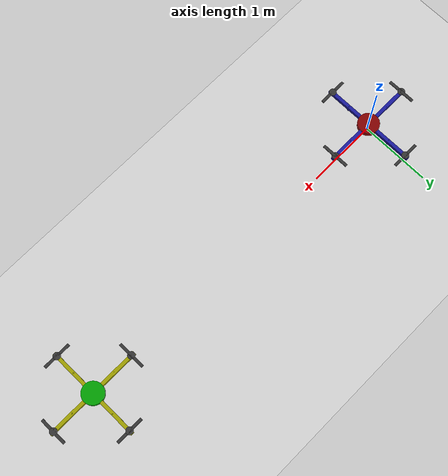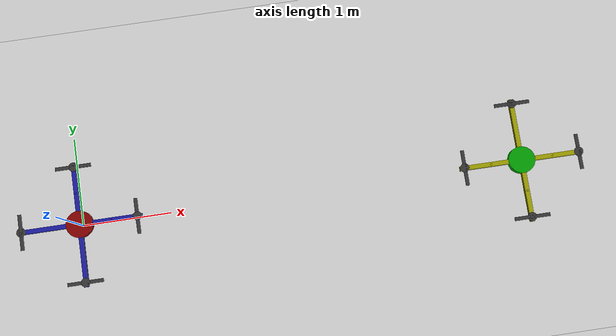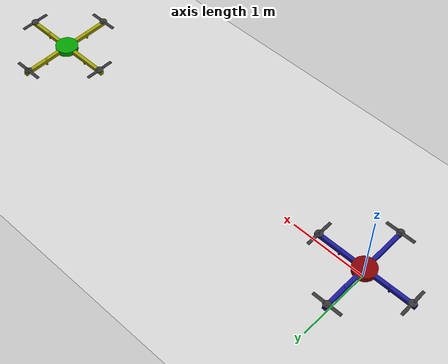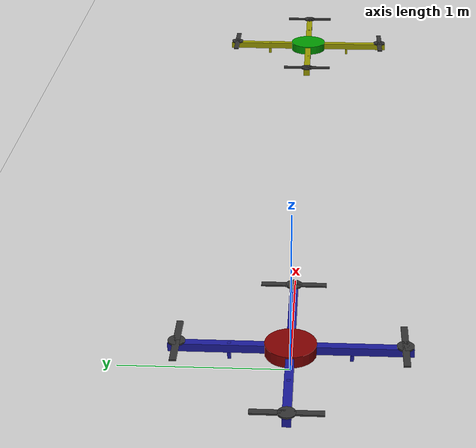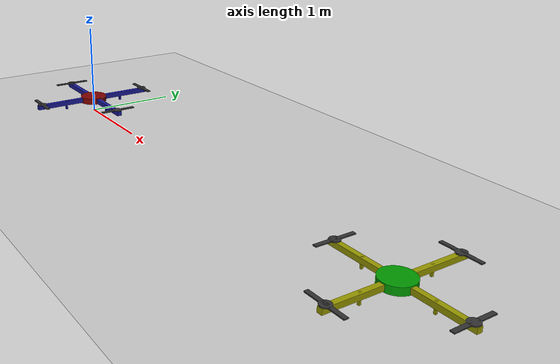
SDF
<sdf version="1.4">
 <world name="quadcopter_world">
  <include><uri>model://ground_plane</uri></include>
  <include><uri>model://sun</uri></include>
  <model name="controlled_quadcopter">
   <link name="center_cylinder">
    <pose>0 0 0.15 0 0 0</pose>
    <collision name="collision">
     <geometry><cylinder><radius>0.2</radius><length>0.07</length></cylinder></geometry>
    </collision>
    <visual name="visual">
     <geometry><cylinder><radius>0.15</radius><length>0.07</length></cylinder></geometry>
     <material>
      <ambient>0.5 0 0 1</ambient>
      <diffuse>0.5 0 0 1</diffuse>
      <specular>0.5 0 0 1</specular>
      <emissive>0.5 0 0 1</emissive>
     </material>
    </visual>
   </link>
   <link name="arm_1">
    <pose>0.35 0 0.15 0 0 0</pose>
    <collision name="collision"><geometry><box><size>0.7 0.05 0.05</size></box></geometry></collision>
    <visual name="visual">
     <geometry><box><size>0.7 0.05 0.05</size></box></geometry>
     <material>
      <ambient>0.1 0.1 0.6 1</ambient>
      <diffuse>0.1 0.1 0.6 1</diffuse>
      <specular>0.1 0.1 0.6 1</specular>
      <emissive>0.1 0.1 0.6 1</emissive>
     </material>
    </visual>
    <collision name="base1_collision"><geometry><box><size>0.02 0.02 0.1</size></box></geometry></collision>
    <visual name="base_visual">
     <geometry><box><size>0.02 0.02 0.1</size></box></geometry>
     <material>
      <ambient>0.1 0.1 0.6 1</ambient>
      <diffuse>0.1 0.1 0.6 1</diffuse>
      <specular>0.1 0.1 0.6 1</specular>
      <emissive>0.1 0.1 0.6 1</emissive>
     </material>
     <pose>0 0 -0.025 0 0 0</pose>
    </visual>
   </link>
   <link name="arm_2">
    <pose>0 0.35 0.15 0 0 1.5708</pose>
    <collision name="collision"><geometry><box><size>0.7 0.05 0.05</size></box></geometry></collision>
    <visual name="visual">
     <geometry><box><size>0.7 0.05 0.05</size></box></geometry>
     <material>
      <ambient>0.1 0.1 0.6 1</ambient>
      <diffuse>0.1 0.1 0.6 1</diffuse>
      <specular>0.1 0.1 0.6 1</specular>
      <emissive>0.1 0.1 0.6 1</emissive>
     </material>
    </visual>
    <collision name="base2_collision"><geometry><box><size>0.02 0.02 0.1</size></box></geometry></collision>
    <visual name="base_visual">
     <geometry><box><size>0.02 0.02 0.1</size></box></geometry>
     <material>
      <ambient>0.1 0.1 0.6 1</ambient>
      <diffuse>0.1 0.1 0.6 1</diffuse>
      <specular>0.1 0.1 0.6 1</specular>
      <emissive>0.1 0.1 0.6 1</emissive>
     </material>
     <pose>0 0 -0.025 0 0 0</pose>
    </visual>
   </link>
   <link name="arm_3">
    <pose>-0.35 0 0.15 0 0 0</pose>
    <collision name="collision"><geometry><box><size>0.7 0.05 0.05</size></box></geometry></collision>
    <visual name="visual">
     <geometry><box><size>0.7 0.05 0.05</size></box></geometry>
     <material>
      <ambient>0.1 0.1 0.6 1</ambient>
      <diffuse>0.1 0.1 0.6 1</diffuse>
      <specular>0.1 0.1 0.6 1</specular>
      <emissive>0.1 0.1 0.6 1</emissive>
     </material>
    </visual>
    <collision name="base3_collision"><geometry><box><size>0.02 0.02 0.1</size></box></geometry></collision>
    <visual name="base_visual">
     <geometry><box><size>0.02 0.02 0.1</size></box></geometry>
     <material>
      <ambient>0.1 0.1 0.6 1</ambient>
      <diffuse>0.1 0.1 0.6 1</diffuse>
      <specular>0.1 0.1 0.6 1</specular>
      <emissive>0.1 0.1 0.6 1</emissive>
     </material>
     <pose>0 0 -0.025 0 0 0</pose>
    </visual>
   </link>
   <link name="arm_4">
    <pose>0 -0.35 0.15 0 0 1.5708</pose>
    <collision name="collision"><geometry><box><size>0.7 0.05 0.05</size></box></geometry></collision>
    <visual name="visual">
     <geometry><box><size>0.7 0.05 0.05</size></box></geometry>
     <material>
      <ambient>0.1 0.1 0.6 1</ambient>
      <diffuse>0.1 0.1 0.6 1</diffuse>
      <specular>0.1 0.1 0.6 1</specular>
      <emissive>0.1 0.1 0.6 1</emissive>
     </material>
    </visual>
    <collision name="base4_collision"><geometry><box><size>0.02 0.02 0.1</size></box></geometry></collision>
    <visual name="base_visual">
     <geometry><box><size>0.02 0.02 0.1</size></box></geometry>
     <material>
      <ambient>0.1 0.1 0.6 1</ambient>
      <diffuse>0.1 0.1 0.6 1</diffuse>
      <specular>0.1 0.1 0.6 1</specular>
      <emissive>0.1 0.1 0.6 1</emissive>
     </material>
     <pose>0 0 -0.025 0 0 0</pose>
    </visual>
   </link>
   <link name="rotor_1">
    <pose>0.65 0 0.18 0 0 0</pose>
    <collision name="collision">
     <geometry><cylinder><radius>0.05</radius><length>0.01</length></cylinder></geometry>
    </collision>
    <visual name="visual">
     <geometry><cylinder><radius>0.05</radius><length>0.01</length></cylinder></geometry>
     <material>
      <ambient>0.2 0.2 0.2 1</ambient>
      <diffuse>0.2 0.2 0.2 1</diffuse>
      <specular>0.2 0.2 0.2 1</specular>
      <emissive>0.2 0.2 0.2 1</emissive>
     </material>
    </visual>
    <collision name="blade_1_collision">
     <geometry><box><size>0.2 0.04 0.01</size></box></geometry>
     <pose>0 0.1 0 0 0 1.5708</pose>
    </collision>
    <visual name="blade_1_visual">
     <geometry><box><size>0.2 0.04 0.01</size></box></geometry>
     <material>
      <ambient>0.2 0.2 0.2 1</ambient>
      <diffuse>0.2 0.2 0.2 1</diffuse>
      <specular>0.2 0.2 0.2 1</specular>
      <emissive>0.2 0.2 0.2 1</emissive>
     </material>
     <pose>0 0.1 0 0 0 1.5708</pose>
    </visual>
    <collision name="blade_2_collision">
     <geometry><box><size>0.2 0.04 0.01</size></box></geometry>
     <pose>0 -0.1 0 0 0 1.5708</pose>
    </collision>
    <visual name="blade_2_visual">
     <geometry><box><size>0.2 0.04 0.01</size></box></geometry>
     <material>
      <ambient>0.2 0.2 0.2 1</ambient>
      <diffuse>0.2 0.2 0.2 1</diffuse>
      <specular>0.2 0.2 0.2 1</specular>
      <emissive>0.2 0.2 0.2 1</emissive>
     </material>
     <pose>0 -0.1 0 0 0 1.5708</pose>
    </visual>
   </link>
   <link name="rotor_2">
    <pose>0 0.65 0.18 0 0 0</pose>
    <collision name="collision">
     <geometry><cylinder><radius>0.05</radius><length>0.01</length></cylinder></geometry>
    </collision>
    <visual name="visual">
     <geometry><cylinder><radius>0.05</radius><length>0.01</length></cylinder></geometry>
     <material>
      <ambient>0.2 0.2 0.2 1</ambient>
      <diffuse>0.2 0.2 0.2 1</diffuse>
      <specular>0.1 0.1 0.1 1</specular>
      <emissive>0 0 0 1</emissive>
     </material>
    </visual>
    <collision name="blade_1_collision">
     <geometry><box><size>0.2 0.04 0.01</size></box></geometry>
     <pose>0.1 0 0 0 0 0</pose>
    </collision>
    <visual name="blade_1_visual">
     <geometry><box><size>0.2 0.04 0.01</size></box></geometry>
     <material>
      <ambient>0.2 0.2 0.2 1</ambient>
      <diffuse>0.2 0.2 0.2 1</diffuse>
      <specular>0.1 0.1 0.1 1</specular>
      <emissive>0 0 0 1</emissive>
     </material>
     <pose>0.1 0 0 0 0 0</pose>
    </visual>
    <collision name="blade_2_collision">
     <geometry><box><size>0.2 0.04 0.01</size></box></geometry>
     <pose>-0.1 0 0 0 0 0</pose>
    </collision>
    <visual name="blade_2_visual">
     <geometry><box><size>0.2 0.04 0.01</size></box></geometry>
     <material>
      <ambient>0.2 0.2 0.2 1</ambient>
      <diffuse>0.2 0.2 0.2 1</diffuse>
      <specular>0.1 0.1 0.1 1</specular>
      <emissive>0 0 0 1</emissive>
     </material>
     <pose>-0.1 0 0 0 0 0</pose>
    </visual>
   </link>
   <link name="rotor_3">
    <pose>-0.65 0 0.18 0 0 0</pose>
    <collision name="collision">
     <geometry><cylinder><radius>0.05</radius><length>0.01</length></cylinder></geometry>
    </collision>
    <visual name="visual">
     <geometry><cylinder><radius>0.05</radius><length>0.01</length></cylinder></geometry>
     <material>
      <ambient>0.2 0.2 0.2 1</ambient>
      <diffuse>0.2 0.2 0.2 1</diffuse>
      <specular>0.2 0.2 0.2 1</specular>
      <emissive>0.2 0.2 0.2 1</emissive>
     </material>
    </visual>
    <collision name="blade_1_collision">
     <geometry><box><size>0.2 0.04 0.01</size></box></geometry>
     <pose>0 0.1 0 0 0 1.5708</pose>
    </collision>
    <visual name="blade_1_visual">
     <geometry><box><size>0.2 0.04 0.01</size></box></geometry>
     <material>
      <ambient>0.2 0.2 0.2 1</ambient>
      <diffuse>0.2 0.2 0.2 1</diffuse>
      <specular>0.2 0.2 0.2 1</specular>
      <emissive>0.2 0.2 0.2 1</emissive>
     </material>
     <pose>0 0.1 0 0 0 1.5708</pose>
    </visual>
    <collision name="blade_2_collision">
     <geometry><box><size>0.2 0.04 0.01</size></box></geometry>
     <pose>0 -0.1 0 0 0 1.5708</pose>
    </collision>
    <visual name="blade_2_visual">
     <geometry><box><size>0.2 0.04 0.01</size></box></geometry>
     <material>
      <ambient>0.2 0.2 0.2 1</ambient>
      <diffuse>0.2 0.2 0.2 1</diffuse>
      <specular>0.2 0.2 0.2 1</specular>
      <emissive>0.2 0.2 0.2 1</emissive>
     </material>
     <pose>0 -0.1 0 0 0 1.5708</pose>
    </visual>
   </link>
   <link name="rotor_4">
    <pose>0 -0.65 0.18 0 0 0</pose>
    <collision name="collision">
     <geometry><cylinder><radius>0.05</radius><length>0.01</length></cylinder></geometry>
    </collision>
    <visual name="visual">
     <geometry><cylinder><radius>0.05</radius><length>0.01</length></cylinder></geometry>
     <material>
      <ambient>0.2 0.2 0.2 1</ambient>
      <diffuse>0.2 0.2 0.2 1</diffuse>
      <specular>0.1 0.1 0.1 1</specular>
      <emissive>0 0 0 1</emissive>
     </material>
    </visual>
    <collision name="blade_1_collision">
     <geometry><box><size>0.2 0.04 0.01</size></box></geometry>
     <pose>0.1 0 0 0 0 0</pose>
    </collision>
    <visual name="blade_1_visual">
     <geometry><box><size>0.2 0.04 0.01</size></box></geometry>
     <material>
      <ambient>0.2 0.2 0.2 1</ambient>
      <diffuse>0.2 0.2 0.2 1</diffuse>
      <specular>0.1 0.1 0.1 1</specular>
      <emissive>0 0 0 1</emissive>
     </material>
     <pose>0.1 0 0 0 0 0</pose>
    </visual>
    <collision name="blade_2_collision">
     <geometry><box><size>0.2 0.04 0.01</size></box></geometry>
     <pose>-0.1 0 0 0 0 0</pose>
    </collision>
    <visual name="blade_2_visual">
     <geometry><box><size>0.2 0.04 0.01</size></box></geometry>
     <material>
      <ambient>0.2 0.2 0.2 1</ambient>
      <diffuse>0.2 0.2 0.2 1</diffuse>
      <specular>0.1 0.1 0.1 1</specular>
      <emissive>0 0 0 1</emissive>
     </material>
     <pose>-0.1 0 0 0 0 0</pose>
    </visual>
   </link>
   <joint name="arm_1_joint" type="fixed"><parent>center_cylinder</parent><child>arm_1</child></joint>
   <joint name="arm_2_joint" type="fixed"><parent>center_cylinder</parent><child>arm_2</child></joint>
   <joint name="arm_3_joint" type="fixed"><parent>center_cylinder</parent><child>arm_3</child></joint>
   <joint name="arm_4_joint" type="fixed"><parent>center_cylinder</parent><child>arm_4</child></joint>
   <joint name="rotor_1_joint" type="revolute">
    <parent>arm_1</parent>
    <child>rotor_1</child>
    <axis><xyz>0 0 1</xyz></axis>
   </joint>
   <joint name="rotor_2_joint" type="revolute">
    <parent>arm_2</parent>
    <child>rotor_2</child>
    <axis><xyz>0 0 1</xyz></axis>
   </joint>
   <joint name="rotor_3_joint" type="revolute">
    <parent>arm_3</parent>
    <child>rotor_3</child>
    <axis><xyz>0 0 1</xyz></axis>
   </joint>
   <joint name="rotor_4_joint" type="revolute">
    <parent>arm_4</parent>
    <child>rotor_4</child>
    <axis><xyz>0 0 1</xyz></axis>
   </joint>
  </model>
  <model name="autonomous_quadcopter">
   <pose>5 0 0 0 0 0</pose>
   <link name="center_cylinder">
    <pose>0 0 0.15 0 0 0</pose>
    <collision name="collision">
     <geometry><cylinder><radius>0.2</radius><length>0.07</length></cylinder></geometry>
    </collision>
    <visual name="visual">
     <geometry><cylinder><radius>0.15</radius><length>0.07</length></cylinder></geometry>
     <material>
      <ambient>0 0.6 0 1</ambient>
      <diffuse>0 0.6 0 1</diffuse>
      <specular>0 0.6 0 1</specular>
      <emissive>0 0.6 0 1</emissive>
     </material>
    </visual>
   </link>
   <link name="arm_1">
    <pose>0.35 0 0.15 0 0 0</pose>
    <collision name="collision"><geometry><box><size>0.7 0.05 0.05</size></box></geometry></collision>
    <visual name="visual">
     <geometry><box><size>0.7 0.05 0.05</size></box></geometry>
     <material>
      <ambient>0.6 0.6 0 1</ambient>
      <diffuse>0.6 0.6 0 1</diffuse>
      <specular>0.6 0.6 0 1</specular>
      <emissive>0.6 0.6 0 1</emissive>
     </material>
    </visual>
    <collision name="base1_collision"><geometry><box><size>0.02 0.02 0.1</size></box></geometry></collision>
    <visual name="base_visual">
     <geometry><box><size>0.02 0.02 0.1</size></box></geometry>
     <material>
      <ambient>0.6 0.6 0 1</ambient>
      <diffuse>0.6 0.6 0 1</diffuse>
      <specular>0.6 0.6 0 1</specular>
      <emissive>0.6 0.6 0 1</emissive>
     </material>
     <pose>0 0 -0.025 0 0 0</pose>
    </visual>
   </link>
   <link name="arm_2">
    <pose>0 0.35 0.15 0 0 1.5708</pose>
    <collision name="collision"><geometry><box><size>0.7 0.05 0.05</size></box></geometry></collision>
    <visual name="visual">
     <geometry><box><size>0.7 0.05 0.05</size></box></geometry>
     <material>
      <ambient>0.6 0.6 0 1</ambient>
      <diffuse>0.6 0.6 0 1</diffuse>
      <specular>0.6 0.6 0 1</specular>
      <emissive>0.6 0.6 0 1</emissive>
     </material>
    </visual>
    <collision name="base2_collision"><geometry><box><size>0.02 0.02 0.1</size></box></geometry></collision>
    <visual name="base_visual">
     <geometry><box><size>0.02 0.02 0.1</size></box></geometry>
     <material>
      <ambient>0.6 0.6 0 1</ambient>
      <diffuse>0.6 0.6 0 1</diffuse>
      <specular>0.6 0.6 0 1</specular>
      <emissive>0.6 0.6 0 1</emissive>
     </material>
     <pose>0 0 -0.025 0 0 0</pose>
    </visual>
   </link>
   <link name="arm_3">
    <pose>-0.35 0 0.15 0 0 0</pose>
    <collision name="collision"><geometry><box><size>0.7 0.05 0.05</size></box></geometry></collision>
    <visual name="visual">
     <geometry><box><size>0.7 0.05 0.05</size></box></geometry>
     <material>
      <ambient>0.6 0.6 0 1</ambient>
      <diffuse>0.6 0.6 0 1</diffuse>
      <specular>0.6 0.6 0 1</specular>
      <emissive>0.6 0.6 0 1</emissive>
     </material>
    </visual>
    <collision name="base3_collision"><geometry><box><size>0.02 0.02 0.1</size></box></geometry></collision>
    <visual name="base_visual">
     <geometry><box><size>0.02 0.02 0.1</size></box></geometry>
     <material>
      <ambient>0.6 0.6 0 1</ambient>
      <diffuse>0.6 0.6 0 1</diffuse>
      <specular>0.6 0.6 0 1</specular>
      <emissive>0.6 0.6 0 1</emissive>
     </material>
     <pose>0 0 -0.025 0 0 0</pose>
    </visual>
   </link>
   <link name="arm_4">
    <pose>0 -0.35 0.15 0 0 1.5708</pose>
    <collision name="collision"><geometry><box><size>0.7 0.05 0.05</size></box></geometry></collision>
    <visual name="visual">
     <geometry><box><size>0.7 0.05 0.05</size></box></geometry>
     <material>
      <ambient>0.6 0.6 0 1</ambient>
      <diffuse>0.6 0.6 0 1</diffuse>
      <specular>0.6 0.6 0 1</specular>
      <emissive>0.6 0.6 0 1</emissive>
     </material>
    </visual>
    <collision name="base4_collision"><geometry><box><size>0.02 0.02 0.1</size></box></geometry></collision>
    <visual name="base_visual">
     <geometry><box><size>0.02 0.02 0.1</size></box></geometry>
     <material>
      <ambient>0.6 0.6 0 1</ambient>
      <diffuse>0.6 0.6 0 1</diffuse>
      <specular>0.6 0.6 0 1</specular>
      <emissive>0.6 0.6 0 1</emissive>
     </material>
     <pose>0 0 -0.025 0 0 0</pose>
    </visual>
   </link>
   <link name="rotor_1">
    <pose>0.65 0 0.18 0 0 0</pose>
    <collision name="collision">
     <geometry><cylinder><radius>0.05</radius><length>0.01</length></cylinder></geometry>
    </collision>
    <visual name="visual">
     <geometry><cylinder><radius>0.05</radius><length>0.01</length></cylinder></geometry>
     <material>
      <ambient>0.2 0.2 0.2 1</ambient>
      <diffuse>0.2 0.2 0.2 1</diffuse>
      <specular>0.2 0.2 0.2 1</specular>
      <emissive>0.2 0.2 0.2 1</emissive>
     </material>
    </visual>
    <collision name="blade_1_collision">
     <geometry><box><size>0.2 0.04 0.01</size></box></geometry>
     <pose>0 0.1 0 0 0 1.5708</pose>
    </collision>
    <visual name="blade_1_visual">
     <geometry><box><size>0.2 0.04 0.01</size></box></geometry>
     <material>
      <ambient>0.2 0.2 0.2 1</ambient>
      <diffuse>0.2 0.2 0.2 1</diffuse>
      <specular>0.2 0.2 0.2 1</specular>
      <emissive>0.2 0.2 0.2 1</emissive>
     </material>
     <pose>0 0.1 0 0 0 1.5708</pose>
    </visual>
    <collision name="blade_2_collision">
     <geometry><box><size>0.2 0.04 0.01</size></box></geometry>
     <pose>0 -0.1 0 0 0 1.5708</pose>
    </collision>
    <visual name="blade_2_visual">
     <geometry><box><size>0.2 0.04 0.01</size></box></geometry>
     <material>
      <ambient>0.2 0.2 0.2 1</ambient>
      <diffuse>0.2 0.2 0.2 1</diffuse>
      <specular>0.2 0.2 0.2 1</specular>
      <emissive>0.2 0.2 0.2 1</emissive>
     </material>
     <pose>0 -0.1 0 0 0 1.5708</pose>
    </visual>
   </link>
   <link name="rotor_2">
    <pose>0 0.65 0.18 0 0 0</pose>
    <collision name="collision">
     <geometry><cylinder><radius>0.05</radius><length>0.01</length></cylinder></geometry>
    </collision>
    <visual name="visual">
     <geometry><cylinder><radius>0.05</radius><length>0.01</length></cylinder></geometry>
     <material>
      <ambient>0.2 0.2 0.2 1</ambient>
      <diffuse>0.2 0.2 0.2 1</diffuse>
      <specular>0.1 0.1 0.1 1</specular>
      <emissive>0 0 0 1</emissive>
     </material>
    </visual>
    <collision name="blade_1_collision">
     <geometry><box><size>0.2 0.04 0.01</size></box></geometry>
     <pose>0.1 0 0 0 0 0</pose>
    </collision>
    <visual name="blade_1_visual">
     <geometry><box><size>0.2 0.04 0.01</size></box></geometry>
     <material>
      <ambient>0.2 0.2 0.2 1</ambient>
      <diffuse>0.2 0.2 0.2 1</diffuse>
      <specular>0.1 0.1 0.1 1</specular>
      <emissive>0 0 0 1</emissive>
     </material>
     <pose>0.1 0 0 0 0 0</pose>
    </visual>
    <collision name="blade_2_collision">
     <geometry><box><size>0.2 0.04 0.01</size></box></geometry>
     <pose>-0.1 0 0 0 0 0</pose>
    </collision>
    <visual name="blade_2_visual">
     <geometry><box><size>0.2 0.04 0.01</size></box></geometry>
     <material>
      <ambient>0.2 0.2 0.2 1</ambient>
      <diffuse>0.2 0.2 0.2 1</diffuse>
      <specular>0.1 0.1 0.1 1</specular>
      <emissive>0 0 0 1</emissive>
     </material>
     <pose>-0.1 0 0 0 0 0</pose>
    </visual>
   </link>
   <link name="rotor_3">
    <pose>-0.65 0 0.18 0 0 0</pose>
    <collision name="collision">
     <geometry><cylinder><radius>0.05</radius><length>0.01</length></cylinder></geometry>
    </collision>
    <visual name="visual">
     <geometry><cylinder><radius>0.05</radius><length>0.01</length></cylinder></geometry>
     <material>
      <ambient>0.2 0.2 0.2 1</ambient>
      <diffuse>0.2 0.2 0.2 1</diffuse>
      <specular>0.2 0.2 0.2 1</specular>
      <emissive>0.2 0.2 0.2 1</emissive>
     </material>
    </visual>
    <collision name="blade_1_collision">
     <geometry><box><size>0.2 0.04 0.01</size></box></geometry>
     <pose>0 0.1 0 0 0 1.5708</pose>
    </collision>
    <visual name="blade_1_visual">
     <geometry><box><size>0.2 0.04 0.01</size></box></geometry>
     <material>
      <ambient>0.2 0.2 0.2 1</ambient>
      <diffuse>0.2 0.2 0.2 1</diffuse>
      <specular>0.2 0.2 0.2 1</specular>
      <emissive>0.2 0.2 0.2 1</emissive>
     </material>
     <pose>0 0.1 0 0 0 1.5708</pose>
    </visual>
    <collision name="blade_2_collision">
     <geometry><box><size>0.2 0.04 0.01</size></box></geometry>
     <pose>0 -0.1 0 0 0 1.5708</pose>
    </collision>
    <visual name="blade_2_visual">
     <geometry><box><size>0.2 0.04 0.01</size></box></geometry>
     <material>
      <ambient>0.2 0.2 0.2 1</ambient>
      <diffuse>0.2 0.2 0.2 1</diffuse>
      <specular>0.2 0.2 0.2 1</specular>
      <emissive>0.2 0.2 0.2 1</emissive>
     </material>
     <pose>0 -0.1 0 0 0 1.5708</pose>
    </visual>
   </link>
   <link name="rotor_4">
    <pose>0 -0.65 0.18 0 0 0</pose>
    <collision name="collision">
     <geometry><cylinder><radius>0.05</radius><length>0.01</length></cylinder></geometry>
    </collision>
    <visual name="visual">
     <geometry><cylinder><radius>0.05</radius><length>0.01</length></cylinder></geometry>
     <material>
      <ambient>0.2 0.2 0.2 1</ambient>
      <diffuse>0.2 0.2 0.2 1</diffuse>
      <specular>0.1 0.1 0.1 1</specular>
      <emissive>0 0 0 1</emissive>
     </material>
    </visual>
    <collision name="blade_1_collision">
     <geometry><box><size>0.2 0.04 0.01</size></box></geometry>
     <pose>0.1 0 0 0 0 0</pose>
    </collision>
    <visual name="blade_1_visual">
     <geometry><box><size>0.2 0.04 0.01</size></box></geometry>
     <material>
      <ambient>0.2 0.2 0.2 1</ambient>
      <diffuse>0.2 0.2 0.2 1</diffuse>
      <specular>0.1 0.1 0.1 1</specular>
      <emissive>0 0 0 1</emissive>
     </material>
     <pose>0.1 0 0 0 0 0</pose>
    </visual>
    <collision name="blade_2_collision">
     <geometry><box><size>0.2 0.04 0.01</size></box></geometry>
     <pose>-0.1 0 0 0 0 0</pose>
    </collision>
    <visual name="blade_2_visual">
     <geometry><box><size>0.2 0.04 0.01</size></box></geometry>
     <material>
      <ambient>0.2 0.2 0.2 1</ambient>
      <diffuse>0.2 0.2 0.2 1</diffuse>
      <specular>0.1 0.1 0.1 1</specular>
      <emissive>0 0 0 1</emissive>
     </material>
     <pose>-0.1 0 0 0 0 0</pose>
    </visual>
   </link>
   <joint name="arm_1_joint" type="fixed"><parent>center_cylinder</parent><child>arm_1</child></joint>
   <joint name="arm_2_joint" type="fixed"><parent>center_cylinder</parent><child>arm_2</child></joint>
   <joint name="arm_3_joint" type="fixed"><parent>center_cylinder</parent><child>arm_3</child></joint>
   <joint name="arm_4_joint" type="fixed"><parent>center_cylinder</parent><child>arm_4</child></joint>
   <joint name="rotor_1_joint" type="revolute">
    <parent>arm_1</parent>
    <child>rotor_1</child>
    <axis><xyz>0 0 1</xyz></axis>
   </joint>
   <joint name="rotor_2_joint" type="revolute">
    <parent>arm_2</parent>
    <child>rotor_2</child>
    <axis><xyz>0 0 1</xyz></axis>
   </joint>
   <joint name="rotor_3_joint" type="revolute">
    <parent>arm_3</parent>
    <child>rotor_3</child>
    <axis><xyz>0 0 1</xyz></axis>
   </joint>
   <joint name="rotor_4_joint" type="revolute">
    <parent>arm_4</parent>
    <child>rotor_4</child>
    <axis><xyz>0 0 1</xyz></axis>
   </joint>
  </model>
 </world>
</sdf>
